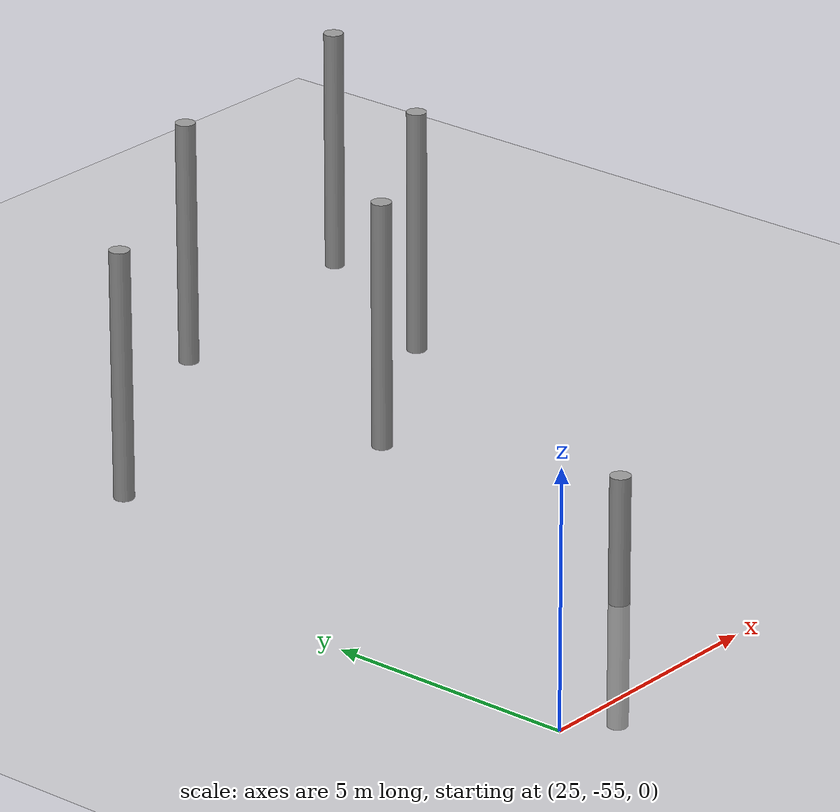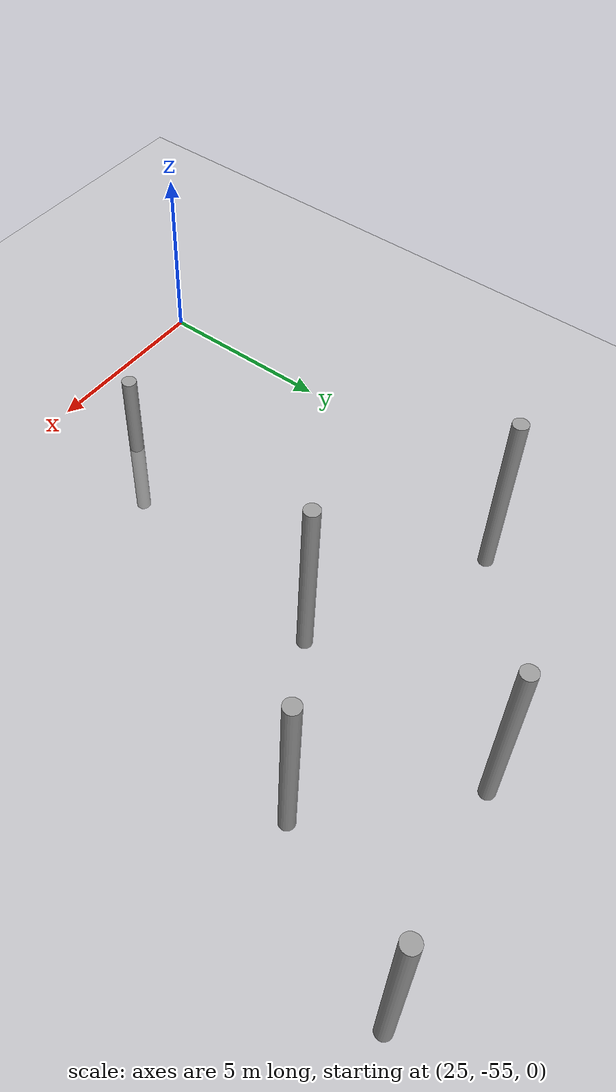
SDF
<sdf version="1.6">
 <world name="default">
  <model name="ground_plane">
   <static>1</static>
   <link name="link">
    <collision name="collision">
     <geometry><plane><normal>0 0 1</normal><size>100 100</size></plane></geometry>
     <surface><friction><ode><mu>100</mu><mu2>50</mu2></ode></friction></surface>
    </collision>
    <visual name="visual">
     <cast_shadows>0</cast_shadows>
     <geometry><plane><normal>0 0 1</normal><size>100 100</size></plane></geometry>
     <material>
      <script><uri>file://media/materials/scripts/gazebo.material</uri><name>Gazebo/Grey</name></script>
     </material>
    </visual>
   </link>
  </model>
  <model name="empty_pillars_9">
   <model name="empty_pillar_clone_10">
    <link name="link">
     <inertial>
      <mass>1</mass>
      <inertia><ixx>0.145833</ixx><ixy>0</ixy><ixz>0</ixz><iyy>0.145833</iyy><iyz>0</iyz><izz>0.125</izz></inertia>
     </inertial>
     <visual name="visual">
      <geometry><cylinder><radius>0.2</radius><length>5</length></cylinder></geometry>
      <material>
       <script><name>Gazebo/Grey</name><uri>file://media/materials/scripts/gazebo.material</uri></script>
       <shader type="vertex"><normal_map>__default__</normal_map></shader>
       <ambient>0.3 0.3 0.3 1</ambient>
       <diffuse>0.7 0.7 0.7 1</diffuse>
       <specular>0.01 0.01 0.01 1</specular>
       <emissive>0 0 0 1</emissive>
      </material>
     </visual>
     <collision name="collision">
      <geometry><cylinder><radius>0.05</radius><length>5</length></cylinder></geometry>
      <surface>
       <friction>
        <ode><mu>1</mu><mu2>1</mu2><fdir1>0 0 0</fdir1><slip1>0</slip1><slip2>0</slip2></ode>
        <torsional>
         <coefficient>1</coefficient>
         <patch_radius>0</patch_radius>
         <surface_radius>0</surface_radius>
         <use_patch_radius>1</use_patch_radius>
         <ode><slip>0</slip></ode>
        </torsional>
       </friction>
       <bounce><restitution_coefficient>0</restitution_coefficient><threshold>1e+06</threshold></bounce>
       <contact>
        <collide_without_contact>0</collide_without_contact>
        <collide_without_contact_bitmask>1</collide_without_contact_bitmask>
        <collide_bitmask>1</collide_bitmask>
        <ode>
         <soft_cfm>0</soft_cfm>
         <soft_erp>0.2</soft_erp>
         <kp>1e+13</kp>
         <kd>1</kd>
         <max_vel>0.01</max_vel>
         <min_depth>0</min_depth>
        </ode>
        <bullet>
         <split_impulse>1</split_impulse>
         <split_impulse_penetration_threshold>-0.01</split_impulse_penetration_threshold>
         <soft_cfm>0</soft_cfm>
         <soft_erp>0.2</soft_erp>
         <kp>1e+13</kp>
         <kd>1</kd>
        </bullet>
       </contact>
      </surface>
     </collision>
    </link>
    <static>0</static>
    <pose>13.5083 -16.8403 0 0 -0 0</pose>
   </model>
   <model name="empty_pillar_clone_11">
    <link name="link">
     <inertial>
      <mass>1</mass>
      <inertia><ixx>0.145833</ixx><ixy>0</ixy><ixz>0</ixz><iyy>0.145833</iyy><iyz>0</iyz><izz>0.125</izz></inertia>
     </inertial>
     <visual name="visual">
      <geometry><cylinder><radius>0.2</radius><length>5</length></cylinder></geometry>
      <material>
       <script><name>Gazebo/Grey</name><uri>file://media/materials/scripts/gazebo.material</uri></script>
       <shader type="vertex"><normal_map>__default__</normal_map></shader>
       <ambient>0.3 0.3 0.3 1</ambient>
       <diffuse>0.7 0.7 0.7 1</diffuse>
       <specular>0.01 0.01 0.01 1</specular>
       <emissive>0 0 0 1</emissive>
      </material>
     </visual>
     <collision name="collision">
      <geometry><cylinder><radius>0.05</radius><length>5</length></cylinder></geometry>
      <surface>
       <friction>
        <ode><mu>1</mu><mu2>1</mu2><fdir1>0 0 0</fdir1><slip1>0</slip1><slip2>0</slip2></ode>
        <torsional>
         <coefficient>1</coefficient>
         <patch_radius>0</patch_radius>
         <surface_radius>0</surface_radius>
         <use_patch_radius>1</use_patch_radius>
         <ode><slip>0</slip></ode>
        </torsional>
       </friction>
       <bounce><restitution_coefficient>0</restitution_coefficient><threshold>1e+06</threshold></bounce>
       <contact>
        <collide_without_contact>0</collide_without_contact>
        <collide_without_contact_bitmask>1</collide_without_contact_bitmask>
        <collide_bitmask>1</collide_bitmask>
        <ode>
         <soft_cfm>0</soft_cfm>
         <soft_erp>0.2</soft_erp>
         <kp>1e+13</kp>
         <kd>1</kd>
         <max_vel>0.01</max_vel>
         <min_depth>0</min_depth>
        </ode>
        <bullet>
         <split_impulse>1</split_impulse>
         <split_impulse_penetration_threshold>-0.01</split_impulse_penetration_threshold>
         <soft_cfm>0</soft_cfm>
         <soft_erp>0.2</soft_erp>
         <kp>1e+13</kp>
         <kd>1</kd>
        </bullet>
       </contact>
      </surface>
     </collision>
    </link>
    <static>0</static>
    <pose>7.98536 -17.8403 0 0 -0 0</pose>
   </model>
   <model name="empty_pillar_clone_46">
    <link name="link">
     <inertial>
      <mass>1</mass>
      <inertia><ixx>0.145833</ixx><ixy>0</ixy><ixz>0</ixz><iyy>0.145833</iyy><iyz>0</iyz><izz>0.125</izz></inertia>
     </inertial>
     <visual name="visual">
      <geometry><cylinder><radius>0.2</radius><length>5</length></cylinder></geometry>
      <material>
       <script><name>Gazebo/Grey</name><uri>file://media/materials/scripts/gazebo.material</uri></script>
       <shader type="vertex"><normal_map>__default__</normal_map></shader>
       <ambient>0.3 0.3 0.3 1</ambient>
       <diffuse>0.7 0.7 0.7 1</diffuse>
       <specular>0.01 0.01 0.01 1</specular>
       <emissive>0 0 0 1</emissive>
      </material>
     </visual>
     <collision name="collision">
      <geometry><cylinder><radius>0.05</radius><length>5</length></cylinder></geometry>
      <surface>
       <friction>
        <ode><mu>1</mu><mu2>1</mu2><fdir1>0 0 0</fdir1><slip1>0</slip1><slip2>0</slip2></ode>
        <torsional>
         <coefficient>1</coefficient>
         <patch_radius>0</patch_radius>
         <surface_radius>0</surface_radius>
         <use_patch_radius>1</use_patch_radius>
         <ode><slip>0</slip></ode>
        </torsional>
       </friction>
       <bounce><restitution_coefficient>0</restitution_coefficient><threshold>1e+06</threshold></bounce>
       <contact>
        <collide_without_contact>0</collide_without_contact>
        <collide_without_contact_bitmask>1</collide_without_contact_bitmask>
        <collide_bitmask>1</collide_bitmask>
        <ode>
         <soft_cfm>0</soft_cfm>
         <soft_erp>0.2</soft_erp>
         <kp>1e+13</kp>
         <kd>1</kd>
         <max_vel>0.01</max_vel>
         <min_depth>0</min_depth>
        </ode>
        <bullet>
         <split_impulse>1</split_impulse>
         <split_impulse_penetration_threshold>-0.01</split_impulse_penetration_threshold>
         <soft_cfm>0</soft_cfm>
         <soft_erp>0.2</soft_erp>
         <kp>1e+13</kp>
         <kd>1</kd>
        </bullet>
       </contact>
      </surface>
     </collision>
    </link>
    <static>0</static>
    <pose>2.45033 -21.185 0 0 -0 0</pose>
   </model>
   <model name="empty_pillar_clone_52">
    <link name="link">
     <inertial>
      <mass>1</mass>
      <inertia><ixx>0.145833</ixx><ixy>0</ixy><ixz>0</ixz><iyy>0.145833</iyy><iyz>0</iyz><izz>0.125</izz></inertia>
     </inertial>
     <visual name="visual">
      <geometry><cylinder><radius>0.2</radius><length>5</length></cylinder></geometry>
      <material>
       <script><name>Gazebo/Grey</name><uri>file://media/materials/scripts/gazebo.material</uri></script>
       <shader type="vertex"><normal_map>__default__</normal_map></shader>
       <ambient>0.3 0.3 0.3 1</ambient>
       <diffuse>0.7 0.7 0.7 1</diffuse>
       <specular>0.01 0.01 0.01 1</specular>
       <emissive>0 0 0 1</emissive>
      </material>
     </visual>
     <collision name="collision">
      <geometry><cylinder><radius>0.05</radius><length>5</length></cylinder></geometry>
      <surface>
       <friction>
        <ode><mu>1</mu><mu2>1</mu2><fdir1>0 0 0</fdir1><slip1>0</slip1><slip2>0</slip2></ode>
        <torsional>
         <coefficient>1</coefficient>
         <patch_radius>0</patch_radius>
         <surface_radius>0</surface_radius>
         <use_patch_radius>1</use_patch_radius>
         <ode><slip>0</slip></ode>
        </torsional>
       </friction>
       <bounce><restitution_coefficient>0</restitution_coefficient><threshold>1e+06</threshold></bounce>
       <contact>
        <collide_without_contact>0</collide_without_contact>
        <collide_without_contact_bitmask>1</collide_without_contact_bitmask>
        <collide_bitmask>1</collide_bitmask>
        <ode>
         <soft_cfm>0</soft_cfm>
         <soft_erp>0.2</soft_erp>
         <kp>1e+13</kp>
         <kd>1</kd>
         <max_vel>0.01</max_vel>
         <min_depth>0</min_depth>
        </ode>
        <bullet>
         <split_impulse>1</split_impulse>
         <split_impulse_penetration_threshold>-0.01</split_impulse_penetration_threshold>
         <soft_cfm>0</soft_cfm>
         <soft_erp>0.2</soft_erp>
         <kp>1e+13</kp>
         <kd>1</kd>
        </bullet>
       </contact>
      </surface>
     </collision>
    </link>
    <static>0</static>
    <pose>11.2833 -20.8743 0 0 -0 0</pose>
   </model>
   <model name="empty_pillar_clone_53">
    <link name="link">
     <inertial>
      <mass>1</mass>
      <inertia><ixx>0.145833</ixx><ixy>0</ixy><ixz>0</ixz><iyy>0.145833</iyy><iyz>0</iyz><izz>0.125</izz></inertia>
     </inertial>
     <visual name="visual">
      <geometry><cylinder><radius>0.2</radius><length>5</length></cylinder></geometry>
      <material>
       <script><name>Gazebo/Grey</name><uri>file://media/materials/scripts/gazebo.material</uri></script>
       <shader type="vertex"><normal_map>__default__</normal_map></shader>
       <ambient>0.3 0.3 0.3 1</ambient>
       <diffuse>0.7 0.7 0.7 1</diffuse>
       <specular>0.01 0.01 0.01 1</specular>
       <emissive>0 0 0 1</emissive>
      </material>
     </visual>
     <collision name="collision">
      <geometry><cylinder><radius>0.05</radius><length>5</length></cylinder></geometry>
      <surface>
       <friction>
        <ode><mu>1</mu><mu2>1</mu2><fdir1>0 0 0</fdir1><slip1>0</slip1><slip2>0</slip2></ode>
        <torsional>
         <coefficient>1</coefficient>
         <patch_radius>0</patch_radius>
         <surface_radius>0</surface_radius>
         <use_patch_radius>1</use_patch_radius>
         <ode><slip>0</slip></ode>
        </torsional>
       </friction>
       <bounce><restitution_coefficient>0</restitution_coefficient><threshold>1e+06</threshold></bounce>
       <contact>
        <collide_without_contact>0</collide_without_contact>
        <collide_without_contact_bitmask>1</collide_without_contact_bitmask>
        <collide_bitmask>1</collide_bitmask>
        <ode>
         <soft_cfm>0</soft_cfm>
         <soft_erp>0.2</soft_erp>
         <kp>1e+13</kp>
         <kd>1</kd>
         <max_vel>0.01</max_vel>
         <min_depth>0</min_depth>
        </ode>
        <bullet>
         <split_impulse>1</split_impulse>
         <split_impulse_penetration_threshold>-0.01</split_impulse_penetration_threshold>
         <soft_cfm>0</soft_cfm>
         <soft_erp>0.2</soft_erp>
         <kp>1e+13</kp>
         <kd>1</kd>
        </bullet>
       </contact>
      </surface>
     </collision>
    </link>
    <static>0</static>
    <pose>7.32522 -23.3523 0 0 -0 0</pose>
   </model>
   <static>0</static>
   <pose>24.7676 -21.5571 2.56943 0 -0 0</pose>
  </model>
  <model name="empty_pillar_0_clone_0">
   <link name="link">
    <inertial>
     <mass>1</mass>
     <inertia><ixx>0.145833</ixx><ixy>0</ixy><ixz>0</ixz><iyy>0.145833</iyy><iyz>0</iyz><izz>0.125</izz></inertia>
    </inertial>
    <visual name="visual">
     <geometry><cylinder><radius>0.2</radius><length>5</length></cylinder></geometry>
     <material>
      <script><name>Gazebo/Grey</name><uri>file://media/materials/scripts/gazebo.material</uri></script>
      <shader type="vertex"><normal_map>__default__</normal_map></shader>
      <ambient>0.3 0.3 0.3 1</ambient>
      <diffuse>0.7 0.7 0.7 1</diffuse>
      <specular>0.01 0.01 0.01 1</specular>
      <emissive>0 0 0 1</emissive>
     </material>
    </visual>
    <collision name="collision">
     <geometry><cylinder><radius>0.05</radius><length>5</length></cylinder></geometry>
     <surface>
      <friction>
       <ode><mu>1</mu><mu2>1</mu2><fdir1>0 0 0</fdir1><slip1>0</slip1><slip2>0</slip2></ode>
       <torsional>
        <coefficient>1</coefficient>
        <patch_radius>0</patch_radius>
        <surface_radius>0</surface_radius>
        <use_patch_radius>1</use_patch_radius>
        <ode><slip>0</slip></ode>
       </torsional>
      </friction>
      <bounce><restitution_coefficient>0</restitution_coefficient><threshold>1e+06</threshold></bounce>
      <contact>
       <collide_without_contact>0</collide_without_contact>
       <collide_without_contact_bitmask>1</collide_without_contact_bitmask>
       <collide_bitmask>1</collide_bitmask>
       <ode>
        <soft_cfm>0</soft_cfm>
        <soft_erp>0.2</soft_erp>
        <kp>1e+13</kp>
        <kd>1</kd>
        <max_vel>0.01</max_vel>
        <min_depth>0</min_depth>
       </ode>
       <bullet>
        <split_impulse>1</split_impulse>
        <split_impulse_penetration_threshold>-0.01</split_impulse_penetration_threshold>
        <soft_cfm>0</soft_cfm>
        <soft_erp>0.2</soft_erp>
        <kp>1e+13</kp>
        <kd>1</kd>
       </bullet>
      </contact>
     </surface>
    </collision>
   </link>
   <static>0</static>
   <pose>29.7458 -52.528 0 0 -0 0</pose>
  </model>
 </world>
</sdf>
